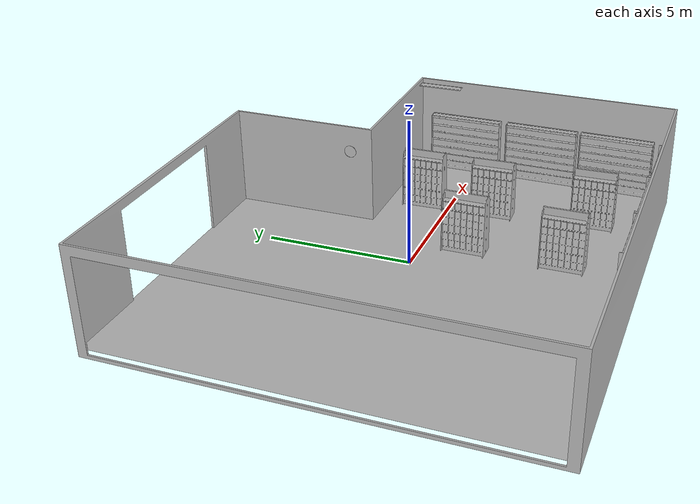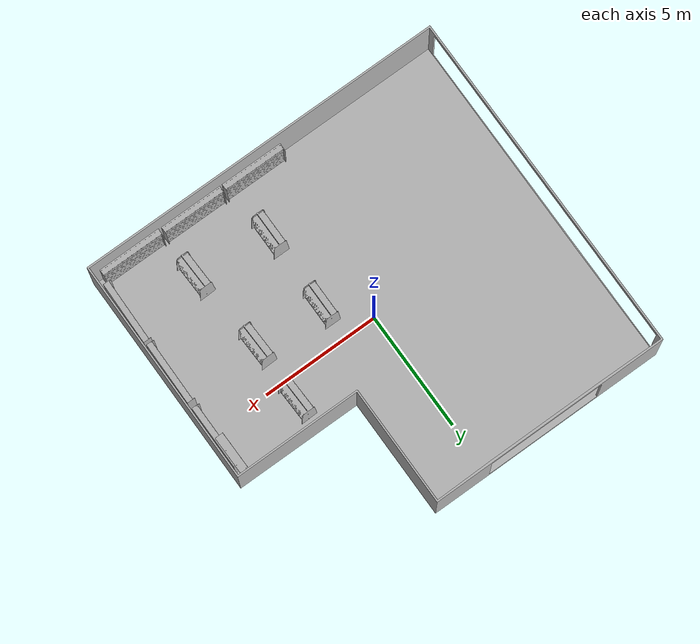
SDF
<sdf version="1.7">
 <world name="default">
  <model name="AirConditionerC_01_001">
   <frame name="aws_robomaker_retail_AirConditionerC_01::__model__" attached_to="aws_robomaker_retail_AirConditionerC_01::link">
    <pose relative_to="__model__">0 0 0 0 -0 0</pose>
   </frame>
   <link name="aws_robomaker_retail_AirConditionerC_01::link">
    <inertial><mass>50</mass></inertial>
    <collision name="collision">
     <geometry>
      <mesh>
       <uri>model://aws_robomaker_retail_AirConditionerC_01/meshes/aws_AirConditionerC_01_collision.DAE</uri>
       <scale>1 1 1</scale>
      </mesh>
     </geometry>
    </collision>
    <visual name="visual">
     <geometry>
      <mesh>
       <uri>model://aws_robomaker_retail_AirConditionerC_01/meshes/aws_AirConditionerC_01_visual.DAE</uri>
      </mesh>
     </geometry>
     <meta><layer>3</layer></meta>
    </visual>
    <pose relative_to="aws_robomaker_retail_AirConditionerC_01::__model__">0 0 0 0 -0 0</pose>
   </link>
   <static>1</static>
   <pose>7.4582 1.42245 3.29094 0 0 -1.56422</pose>
  </model>
  <model name="BookshelfA_01_001">
   <frame name="aws_robomaker_retail_BookshelfA_01::__model__" attached_to="aws_robomaker_retail_BookshelfA_01::link">
    <pose relative_to="__model__">0 0 0 0 -0 0</pose>
   </frame>
   <link name="aws_robomaker_retail_BookshelfA_01::link">
    <inertial>
     <mass>50</mass>
     <inertia><ixx>27.7341</ixx><ixy>0</ixy><ixz>0</ixz><iyy>20.9361</iyy><iyz>0</iyz><izz>11.3596</izz></inertia>
    </inertial>
    <collision name="collision">
     <geometry>
      <mesh>
       <uri>model://aws_robomaker_retail_BookshelfA_01/meshes/aws_BookshelfA_01_collision.DAE</uri>
       <scale>1 1 1</scale>
      </mesh>
     </geometry>
    </collision>
    <visual name="visual">
     <geometry>
      <mesh><uri>model://aws_robomaker_retail_BookshelfA_01/meshes/aws_BookshelfA_01_visual.DAE</uri></mesh>
     </geometry>
     <meta><layer>1</layer></meta>
    </visual>
    <pose relative_to="aws_robomaker_retail_BookshelfA_01::__model__">0 0 0 0 -0 0</pose>
   </link>
   <static>1</static>
   <pose>1.40515 -1.44974 0.03755 0.00349 -3e-06 0.000696</pose>
  </model>
  <model name="BookshelfA_01_002">
   <frame name="aws_robomaker_retail_BookshelfA_01::__model__" attached_to="aws_robomaker_retail_BookshelfA_01::link">
    <pose relative_to="__model__">0 0 0 0 -0 0</pose>
   </frame>
   <link name="aws_robomaker_retail_BookshelfA_01::link">
    <inertial>
     <mass>50</mass>
     <inertia><ixx>27.7341</ixx><ixy>0</ixy><ixz>0</ixz><iyy>20.9361</iyy><iyz>0</iyz><izz>11.3596</izz></inertia>
    </inertial>
    <collision name="collision">
     <geometry>
      <mesh>
       <uri>model://aws_robomaker_retail_BookshelfA_01/meshes/aws_BookshelfA_01_collision.DAE</uri>
       <scale>1 1 1</scale>
      </mesh>
     </geometry>
    </collision>
    <visual name="visual">
     <geometry>
      <mesh><uri>model://aws_robomaker_retail_BookshelfA_01/meshes/aws_BookshelfA_01_visual.DAE</uri></mesh>
     </geometry>
     <meta><layer>1</layer></meta>
    </visual>
    <pose relative_to="aws_robomaker_retail_BookshelfA_01::__model__">0 0 0 0 -0 0</pose>
   </link>
   <static>1</static>
   <pose>1.40515 -4.76165 0.003411 0 -0 0</pose>
  </model>
  <model name="BookshelfB_01_003">
   <frame name="aws_robomaker_retail_BookshelfB_01::__model__" attached_to="aws_robomaker_retail_BookshelfB_01::link">
    <pose relative_to="__model__">0 0 0 0 -0 0</pose>
   </frame>
   <link name="aws_robomaker_retail_BookshelfB_01::link">
    <inertial>
     <mass>50</mass>
     <inertia><ixx>19.8742</ixx><ixy>0</ixy><ixz>0</ixz><iyy>49.1263</iyy><iyz>0</iyz><izz>30.2231</izz></inertia>
    </inertial>
    <collision name="collision">
     <geometry>
      <mesh>
       <uri>model://aws_robomaker_retail_BookshelfB_01/meshes/aws_BookshelfB_01_collision.DAE</uri>
       <scale>1 1 1</scale>
      </mesh>
     </geometry>
    </collision>
    <visual name="visual">
     <geometry>
      <mesh><uri>model://aws_robomaker_retail_BookshelfB_01/meshes/aws_BookshelfB_01_visual.DAE</uri></mesh>
     </geometry>
     <meta><layer>1</layer></meta>
    </visual>
    <pose relative_to="aws_robomaker_retail_BookshelfB_01::__model__">0 0 0 0 -0 0</pose>
   </link>
   <static>1</static>
   <pose>0.522246 -6.9715 0.017947 -0.003292 0 0</pose>
  </model>
  <model name="BookshelfB_01_004">
   <frame name="aws_robomaker_retail_BookshelfB_01::__model__" attached_to="aws_robomaker_retail_BookshelfB_01::link">
    <pose relative_to="__model__">0 0 0 0 -0 0</pose>
   </frame>
   <link name="aws_robomaker_retail_BookshelfB_01::link">
    <inertial>
     <mass>50</mass>
     <inertia><ixx>19.8742</ixx><ixy>0</ixy><ixz>0</ixz><iyy>49.1263</iyy><iyz>0</iyz><izz>30.2231</izz></inertia>
    </inertial>
    <collision name="collision">
     <geometry>
      <mesh>
       <uri>model://aws_robomaker_retail_BookshelfB_01/meshes/aws_BookshelfB_01_collision.DAE</uri>
       <scale>1 1 1</scale>
      </mesh>
     </geometry>
    </collision>
    <visual name="visual">
     <geometry>
      <mesh><uri>model://aws_robomaker_retail_BookshelfB_01/meshes/aws_BookshelfB_01_visual.DAE</uri></mesh>
     </geometry>
     <meta><layer>1</layer></meta>
    </visual>
    <pose relative_to="aws_robomaker_retail_BookshelfB_01::__model__">0 0 0 0 -0 0</pose>
   </link>
   <static>1</static>
   <pose>3.29339 -6.96366 0.017383 8e-06 -2e-06 -0</pose>
  </model>
  <model name="BookshelfB_01_005">
   <frame name="aws_robomaker_retail_BookshelfB_01::__model__" attached_to="aws_robomaker_retail_BookshelfB_01::link">
    <pose relative_to="__model__">0 0 0 0 -0 0</pose>
   </frame>
   <link name="aws_robomaker_retail_BookshelfB_01::link">
    <inertial>
     <mass>50</mass>
     <inertia><ixx>19.8742</ixx><ixy>0</ixy><ixz>0</ixz><iyy>49.1263</iyy><iyz>0</iyz><izz>30.2231</izz></inertia>
    </inertial>
    <collision name="collision">
     <geometry>
      <mesh>
       <uri>model://aws_robomaker_retail_BookshelfB_01/meshes/aws_BookshelfB_01_collision.DAE</uri>
       <scale>1 1 1</scale>
      </mesh>
     </geometry>
    </collision>
    <visual name="visual">
     <geometry>
      <mesh><uri>model://aws_robomaker_retail_BookshelfB_01/meshes/aws_BookshelfB_01_visual.DAE</uri></mesh>
     </geometry>
     <meta><layer>1</layer></meta>
    </visual>
    <pose relative_to="aws_robomaker_retail_BookshelfB_01::__model__">0 0 0 0 -0 0</pose>
   </link>
   <static>1</static>
   <pose>6.08038 -6.98766 0.017409 0.000174 4e-06 0</pose>
  </model>
  <model name="BookshelfB_01_006">
   <frame name="aws_robomaker_retail_BookshelfB_01::__model__" attached_to="aws_robomaker_retail_BookshelfB_01::link">
    <pose relative_to="__model__">0 0 0 0 -0 0</pose>
   </frame>
   <link name="aws_robomaker_retail_BookshelfB_01::link">
    <inertial>
     <mass>50</mass>
     <inertia><ixx>19.8742</ixx><ixy>0</ixy><ixz>0</ixz><iyy>49.1263</iyy><iyz>0</iyz><izz>30.2231</izz></inertia>
    </inertial>
    <collision name="collision">
     <geometry>
      <mesh>
       <uri>model://aws_robomaker_retail_BookshelfB_01/meshes/aws_BookshelfB_01_collision.DAE</uri>
       <scale>1 1 1</scale>
      </mesh>
     </geometry>
    </collision>
    <visual name="visual">
     <geometry>
      <mesh><uri>model://aws_robomaker_retail_BookshelfB_01/meshes/aws_BookshelfB_01_visual.DAE</uri></mesh>
     </geometry>
     <meta><layer>1</layer></meta>
    </visual>
    <pose relative_to="aws_robomaker_retail_BookshelfB_01::__model__">0 0 0 0 -0 0</pose>
   </link>
   <static>1</static>
   <pose>7.47833 -5.2983 0.017443 -0.001974 -0.000211 1.55406</pose>
  </model>
  <model name="BookshelfB_01_007">
   <frame name="aws_robomaker_retail_BookshelfB_01::__model__" attached_to="aws_robomaker_retail_BookshelfB_01::link">
    <pose relative_to="__model__">0 0 0 0 -0 0</pose>
   </frame>
   <link name="aws_robomaker_retail_BookshelfB_01::link">
    <inertial>
     <mass>50</mass>
     <inertia><ixx>19.8742</ixx><ixy>0</ixy><ixz>0</ixz><iyy>49.1263</iyy><iyz>0</iyz><izz>30.2231</izz></inertia>
    </inertial>
    <collision name="collision">
     <geometry>
      <mesh>
       <uri>model://aws_robomaker_retail_BookshelfB_01/meshes/aws_BookshelfB_01_collision.DAE</uri>
       <scale>1 1 1</scale>
      </mesh>
     </geometry>
    </collision>
    <visual name="visual">
     <geometry>
      <mesh><uri>model://aws_robomaker_retail_BookshelfB_01/meshes/aws_BookshelfB_01_visual.DAE</uri></mesh>
     </geometry>
     <meta><layer>1</layer></meta>
    </visual>
    <pose relative_to="aws_robomaker_retail_BookshelfB_01::__model__">0 0 0 0 -0 0</pose>
   </link>
   <static>1</static>
   <pose>7.47833 -2.51065 0.017402 1e-05 -1.3e-05 1.56207</pose>
  </model>
  <model name="BookshelfB_01_008">
   <frame name="aws_robomaker_retail_BookshelfB_01::__model__" attached_to="aws_robomaker_retail_BookshelfB_01::link">
    <pose relative_to="__model__">0 0 0 0 -0 0</pose>
   </frame>
   <link name="aws_robomaker_retail_BookshelfB_01::link">
    <inertial>
     <mass>50</mass>
     <inertia><ixx>19.8742</ixx><ixy>0</ixy><ixz>0</ixz><iyy>49.1263</iyy><iyz>0</iyz><izz>30.2231</izz></inertia>
    </inertial>
    <collision name="collision">
     <geometry>
      <mesh>
       <uri>model://aws_robomaker_retail_BookshelfB_01/meshes/aws_BookshelfB_01_collision.DAE</uri>
       <scale>1 1 1</scale>
      </mesh>
     </geometry>
    </collision>
    <visual name="visual">
     <geometry>
      <mesh><uri>model://aws_robomaker_retail_BookshelfB_01/meshes/aws_BookshelfB_01_visual.DAE</uri></mesh>
     </geometry>
     <meta><layer>1</layer></meta>
    </visual>
    <pose relative_to="aws_robomaker_retail_BookshelfB_01::__model__">0 0 0 0 -0 0</pose>
   </link>
   <static>1</static>
   <pose>7.47833 0.402539 0.017181 3e-06 -0.000156 1.5708</pose>
  </model>
  <model name="RetailShopFloor_01_001">
   <frame name="aws_robomaker_retail_RetailShopFloor_01::__model__" attached_to="aws_robomaker_retail_RetailShopFloor_01::link">
    <pose relative_to="__model__">0 0 0 0 -0 0</pose>
   </frame>
   <link name="aws_robomaker_retail_RetailShopFloor_01::link">
    <inertial><mass>100</mass></inertial>
    <collision name="collision">
     <geometry>
      <mesh>
       <uri>model://aws_robomaker_retail_RetailShopFloor_01/meshes/aws_RetailShopFloor_01_collision.DAE</uri>
       <scale>1 1 1</scale>
      </mesh>
     </geometry>
    </collision>
    <visual name="visual">
     <geometry>
      <mesh>
       <uri>model://aws_robomaker_retail_RetailShopFloor_01/meshes/aws_RetailShopFloor_01_visual.DAE</uri>
      </mesh>
     </geometry>
     <meta><layer>1</layer></meta>
    </visual>
    <pose relative_to="aws_robomaker_retail_RetailShopFloor_01::__model__">0 0 0 0 -0 0</pose>
   </link>
   <static>1</static>
   <pose>-0.002687 0 -0.276618 0 -0 0</pose>
  </model>
  <model name="Horologe_01_001">
   <frame name="aws_robomaker_retail_Horologe_01::__model__" attached_to="aws_robomaker_retail_Horologe_01::link">
    <pose relative_to="__model__">0 0 0 0 -0 0</pose>
   </frame>
   <link name="aws_robomaker_retail_Horologe_01::link">
    <inertial><mass>1</mass></inertial>
    <collision name="collision">
     <geometry>
      <mesh>
       <uri>model://aws_robomaker_retail_Horologe_01/meshes/aws_Horologe_01_collision.DAE</uri>
       <scale>1 1 1</scale>
      </mesh>
     </geometry>
    </collision>
    <visual name="visual">
     <geometry>
      <mesh><uri>model://aws_robomaker_retail_Horologe_01/meshes/aws_Horologe_01_visual.DAE</uri></mesh>
     </geometry>
     <meta><layer>2</layer></meta>
    </visual>
    <pose relative_to="aws_robomaker_retail_Horologe_01::__model__">0 0 0 0 -0 0</pose>
   </link>
   <static>1</static>
   <pose>2.40512 3.02571 2.52519 0 0 -1.56558</pose>
  </model>
  <model name="RetailShopWall_01_001">
   <frame name="aws_robomaker_retail_RetailShopWall_01::__model__" attached_to="aws_robomaker_retail_RetailShopWall_01::link">
    <pose relative_to="__model__">0 0 0 0 -0 0</pose>
   </frame>
   <link name="aws_robomaker_retail_RetailShopWall_01::link">
    <inertial><mass>1</mass></inertial>
    <collision name="collision">
     <geometry>
      <mesh>
       <uri>model://aws_robomaker_retail_RetailShopWall_01/meshes/aws_RetailShopWall_01_collision.DAE</uri>
       <scale>1 1 1</scale>
      </mesh>
     </geometry>
    </collision>
    <visual name="visual">
     <geometry>
      <mesh><uri>model://aws_robomaker_retail_RetailShopWall_01/meshes/aws_RetailShopWall_01_visual.DAE</uri></mesh>
     </geometry>
     <meta><layer>2</layer></meta>
    </visual>
    <pose relative_to="aws_robomaker_retail_RetailShopWall_01::__model__">0 0 0 0 -0 0</pose>
   </link>
   <static>1</static>
   <pose>0 0 -0.281282 0 -0 0</pose>
  </model>
  <model name="BookshelfA_01_003_clone_3">
   <frame name="aws_robomaker_retail_BookshelfA_01::__model__" attached_to="aws_robomaker_retail_BookshelfA_01::link">
    <pose relative_to="__model__">0 0 0 0 -0 0</pose>
   </frame>
   <link name="aws_robomaker_retail_BookshelfA_01::link">
    <inertial>
     <mass>50</mass>
     <inertia><ixx>27.7341</ixx><ixy>0</ixy><ixz>0</ixz><iyy>20.9361</iyy><iyz>0</iyz><izz>11.3596</izz></inertia>
    </inertial>
    <collision name="collision">
     <geometry>
      <mesh>
       <uri>model://aws_robomaker_retail_BookshelfA_01/meshes/aws_BookshelfA_01_collision.DAE</uri>
       <scale>1 1 1</scale>
      </mesh>
     </geometry>
    </collision>
    <visual name="visual">
     <geometry>
      <mesh><uri>model://aws_robomaker_retail_BookshelfA_01/meshes/aws_BookshelfA_01_visual.DAE</uri></mesh>
     </geometry>
     <meta><layer>1</layer></meta>
    </visual>
    <pose relative_to="aws_robomaker_retail_BookshelfA_01::__model__">0 0 0 0 -0 0</pose>
   </link>
   <static>1</static>
   <pose>4.25269 -1.60071 0.006337 0.001313 -0.001987 0.031824</pose>
  </model>
  <model name="BookshelfA_01_003_clone_4">
   <frame name="aws_robomaker_retail_BookshelfA_01::__model__" attached_to="aws_robomaker_retail_BookshelfA_01::link">
    <pose relative_to="__model__">0 0 0 0 -0 0</pose>
   </frame>
   <link name="aws_robomaker_retail_BookshelfA_01::link">
    <inertial>
     <mass>50</mass>
     <inertia><ixx>27.7341</ixx><ixy>0</ixy><ixz>0</ixz><iyy>20.9361</iyy><iyz>0</iyz><izz>11.3596</izz></inertia>
    </inertial>
    <collision name="collision">
     <geometry>
      <mesh>
       <uri>model://aws_robomaker_retail_BookshelfA_01/meshes/aws_BookshelfA_01_collision.DAE</uri>
       <scale>1 1 1</scale>
      </mesh>
     </geometry>
    </collision>
    <visual name="visual">
     <geometry>
      <mesh><uri>model://aws_robomaker_retail_BookshelfA_01/meshes/aws_BookshelfA_01_visual.DAE</uri></mesh>
     </geometry>
     <meta><layer>1</layer></meta>
    </visual>
    <pose relative_to="aws_robomaker_retail_BookshelfA_01::__model__">0 0 0 0 -0 0</pose>
   </link>
   <static>1</static>
   <pose>4.59112 -5.10513 0.006337 0.001313 -0.001987 0.031824</pose>
  </model>
  <model name="BookshelfA_01_003_clone_9">
   <frame name="aws_robomaker_retail_BookshelfA_01::__model__" attached_to="aws_robomaker_retail_BookshelfA_01::link">
    <pose relative_to="__model__">0 0 0 0 -0 0</pose>
   </frame>
   <link name="aws_robomaker_retail_BookshelfA_01::link">
    <inertial>
     <mass>50</mass>
     <inertia><ixx>27.7341</ixx><ixy>0</ixy><ixz>0</ixz><iyy>20.9361</iyy><iyz>0</iyz><izz>11.3596</izz></inertia>
    </inertial>
    <collision name="collision">
     <geometry>
      <mesh>
       <uri>model://aws_robomaker_retail_BookshelfA_01/meshes/aws_BookshelfA_01_collision.DAE</uri>
       <scale>1 1 1</scale>
      </mesh>
     </geometry>
    </collision>
    <visual name="visual">
     <geometry>
      <mesh><uri>model://aws_robomaker_retail_BookshelfA_01/meshes/aws_BookshelfA_01_visual.DAE</uri></mesh>
     </geometry>
     <meta><layer>1</layer></meta>
    </visual>
    <pose relative_to="aws_robomaker_retail_BookshelfA_01::__model__">0 0 0 0 -0 0</pose>
   </link>
   <static>1</static>
   <pose>4.22696 0.936355 0.006337 0.001313 -0.001987 0.031824</pose>
  </model>
 </world>
</sdf>
